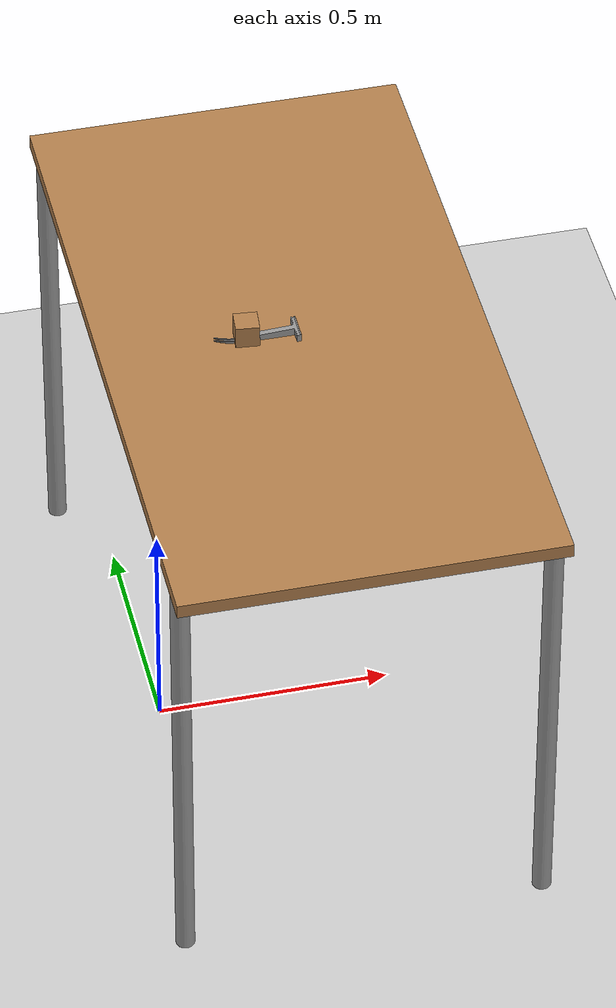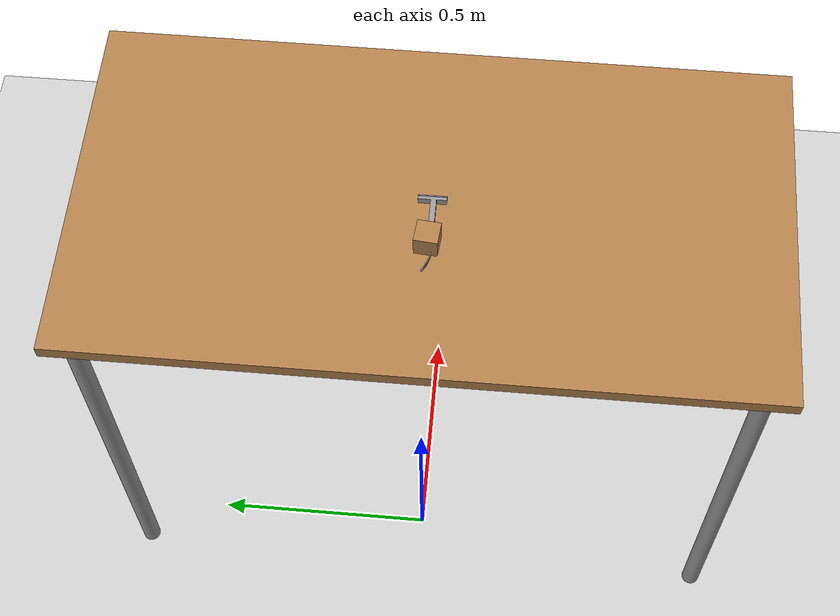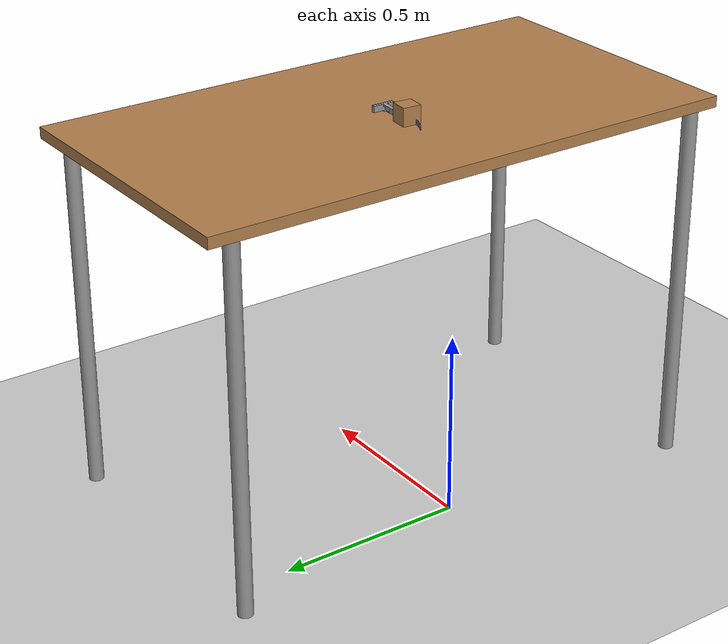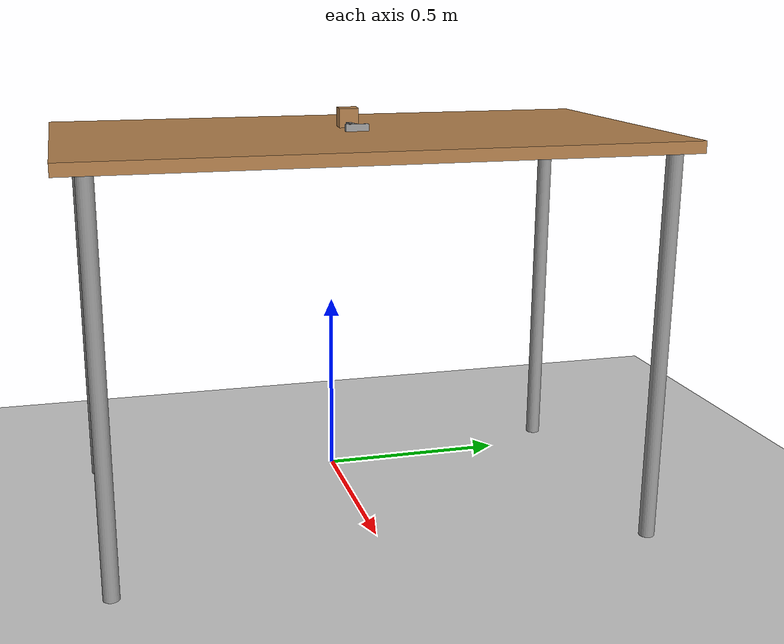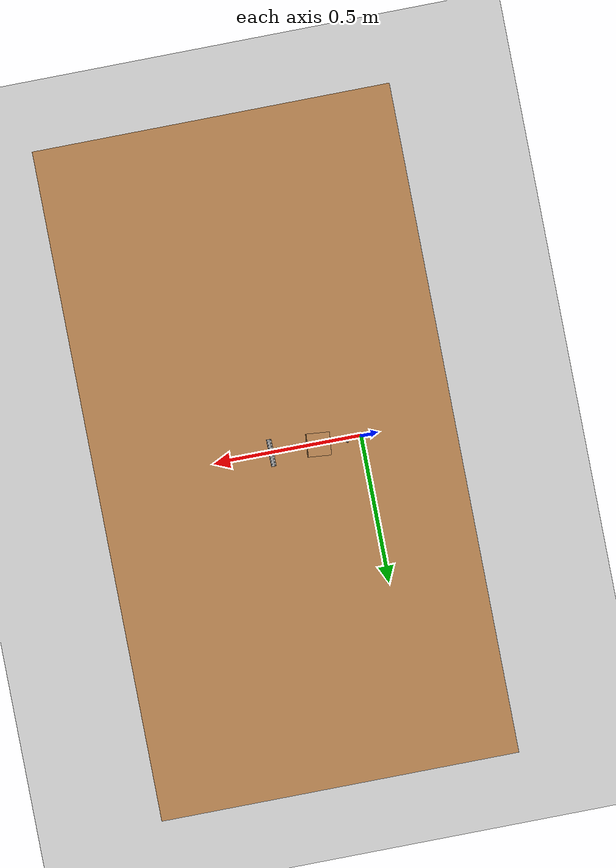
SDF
<sdf version="1.7">
 <world name="CRANE-X7 with Table">
  <scene><shadows>0</shadows><ambient>0.4 0.4 0.4 1</ambient><background>0.7 0.7 0.7 1</background></scene>
  <light name="sun" type="directional">
   <pose>0 0 10 0 -0 0</pose>
   <diffuse>0.8 0.8 0.8 1</diffuse>
   <specular>0.2 0.2 0.2 1</specular>
   <attenuation>
    <range>1000</range>
    <constant>0.9</constant>
    <linear>0.01</linear>
    <quadratic>0.001</quadratic>
   </attenuation>
   <direction>-0.5 0.1 -0.9</direction>
   <spot><inner_angle>0</inner_angle><outer_angle>0</outer_angle><falloff>0</falloff></spot>
  </light>
  <model name="table">
   <frame name="table::__model__" attached_to="table::link">
    <pose relative_to="__model__">0 0 0 0 -0 0</pose>
   </frame>
   <static>1</static>
   <link name="table::link">
    <collision name="surface">
     <pose>0 0 1 0 -0 0</pose>
     <geometry><box><size>1.5 0.8 0.03</size></box></geometry>
     <surface><friction><ode><mu>0.6</mu><mu2>0.6</mu2></ode></friction></surface>
    </collision>
    <visual name="visual1">
     <pose>0 0 1 0 -0 0</pose>
     <geometry><box><size>1.5 0.8 0.03</size></box></geometry>
     <material>
      <script><uri>file://media/materials/scripts/gazebo.material</uri><name>Gazebo/Wood</name></script>
     </material>
    </visual>
    <collision name="front_left_leg">
     <pose>0.68 0.38 0.5 0 -0 0</pose>
     <geometry><cylinder><radius>0.02</radius><length>1</length></cylinder></geometry>
    </collision>
    <visual name="front_left_leg">
     <pose>0.68 0.38 0.5 0 -0 0</pose>
     <geometry><cylinder><radius>0.02</radius><length>1</length></cylinder></geometry>
     <material>
      <script><uri>file://media/materials/scripts/gazebo.material</uri><name>Gazebo/Grey</name></script>
     </material>
    </visual>
    <collision name="front_right_leg">
     <pose>0.68 -0.38 0.5 0 -0 0</pose>
     <geometry><cylinder><radius>0.02</radius><length>1</length></cylinder></geometry>
    </collision>
    <visual name="front_right_leg">
     <pose>0.68 -0.38 0.5 0 -0 0</pose>
     <geometry><cylinder><radius>0.02</radius><length>1</length></cylinder></geometry>
     <material>
      <script><uri>file://media/materials/scripts/gazebo.material</uri><name>Gazebo/Grey</name></script>
     </material>
    </visual>
    <collision name="back_right_leg">
     <pose>-0.68 -0.38 0.5 0 -0 0</pose>
     <geometry><cylinder><radius>0.02</radius><length>1</length></cylinder></geometry>
    </collision>
    <visual name="back_right_leg">
     <pose>-0.68 -0.38 0.5 0 -0 0</pose>
     <geometry><cylinder><radius>0.02</radius><length>1</length></cylinder></geometry>
     <material>
      <script><uri>file://media/materials/scripts/gazebo.material</uri><name>Gazebo/Grey</name></script>
     </material>
    </visual>
    <collision name="back_left_leg">
     <pose>-0.68 0.38 0.5 0 -0 0</pose>
     <geometry><cylinder><radius>0.02</radius><length>1</length></cylinder></geometry>
    </collision>
    <visual name="back_left_leg">
     <pose>-0.68 0.38 0.5 0 -0 0</pose>
     <geometry><cylinder><radius>0.02</radius><length>1</length></cylinder></geometry>
     <material>
      <script><uri>file://media/materials/scripts/gazebo.material</uri><name>Gazebo/Grey</name></script>
     </material>
    </visual>
    <pose relative_to="table::__model__">0 0 0 0 -0 0</pose>
   </link>
   <pose>0.29 0 0 0 -0 1.5708</pose>
  </model>
  <model name="wood_cube_5cm">
   <frame name="wood_cube_5cm::__model__" attached_to="wood_cube_5cm::link">
    <pose relative_to="__model__">0 0 0 0 -0 0</pose>
   </frame>
   <link name="wood_cube_5cm::link">
    <pose relative_to="wood_cube_5cm::__model__">0 0 0.025 0 -0 0</pose>
    <inertial>
     <mass>0.0565</mass>
     <inertia>
      <ixx>2.35417e-05</ixx>
      <ixy>0</ixy>
      <ixz>0</ixz>
      <iyy>2.35417e-05</iyy>
      <iyz>0</iyz>
      <izz>2.35417e-05</izz>
     </inertia>
    </inertial>
    <collision name="collision">
     <geometry><box><size>0.05 0.05 0.05</size></box></geometry>
     <surface>
      <contact>
       <poissons_ratio>0.347</poissons_ratio>
       <elastic_modulus>8.8e+09</elastic_modulus>
       <ode><kp>100000</kp><kd>1</kd><max_vel>1</max_vel><min_depth>0.001</min_depth></ode>
      </contact>
      <friction>
       <torsional>
        <coefficient>1</coefficient>
        <use_patch_radius>0</use_patch_radius>
        <surface_radius>0.05</surface_radius>
       </torsional>
      </friction>
     </surface>
    </collision>
    <visual name="visual">
     <geometry><box><size>0.05 0.05 0.05</size></box></geometry>
     <material>
      <script><uri>file://media/materials/scripts/gazebo.material</uri><name>Gazebo/Wood</name></script>
     </material>
    </visual>
   </link>
   <pose>0.195595 0.001608 1.014 -0 -0 -0.095082</pose>
  </model>
  <model name="ground_plane">
   <frame name="ground_plane::__model__" attached_to="ground_plane::link">
    <pose relative_to="__model__">0 0 0 0 -0 0</pose>
   </frame>
   <static>1</static>
   <link name="ground_plane::link">
    <collision name="collision">
     <geometry><plane><normal>0 0 1</normal><size>100 100</size></plane></geometry>
     <surface><friction><ode><mu>100</mu><mu2>50</mu2></ode></friction></surface>
    </collision>
    <visual name="visual">
     <cast_shadows>0</cast_shadows>
     <geometry><plane><normal>0 0 1</normal><size>100 100</size></plane></geometry>
     <material>
      <script><uri>file://media/materials/scripts/gazebo.material</uri><name>Gazebo/Grey</name></script>
     </material>
    </visual>
    <pose relative_to="ground_plane::__model__">0 0 0 0 -0 0</pose>
   </link>
   <joint name="ground_joint" type="fixed"><parent>ground_plane::link</parent><child>table::link</child></joint>
  </model>
  <gravity>0 0 -9.8</gravity>
  <magnetic_field>6e-06 2.3e-05 -4.2e-05</magnetic_field>
  <atmosphere type="adiabatic"/>
  <physics type="ode">
   <max_step_size>0.001</max_step_size>
   <real_time_factor>1</real_time_factor>
   <real_time_update_rate>1000</real_time_update_rate>
  </physics>
  <spherical_coordinates>
   <surface_model>EARTH_WGS84</surface_model>
   <latitude_deg>0</latitude_deg>
   <longitude_deg>0</longitude_deg>
   <elevation>0</elevation>
   <heading_deg>0</heading_deg>
  </spherical_coordinates>
  <model name="fork">
   <link name="link_1">
    <inertial>
     <mass>1</mass>
     <inertia>
      <ixx>0.166667</ixx>
      <ixy>0</ixy>
      <ixz>0</ixz>
      <iyy>0.166667</iyy>
      <iyz>0</iyz>
      <izz>0.166667</izz>
     </inertia>
    </inertial>
    <pose>0 0 -0 1.5708 -0 0</pose>
    <visual name="visual">
     <geometry>
      <mesh><uri>/home/shiokaze/Documents/git/fork/m/fork_and_mount_m.stl</uri><scale>1 1 1</scale></mesh>
     </geometry>
     <material>
      <lighting>1</lighting>
      <script><uri>file://media/materials/scripts/gazebo.material</uri><name>Gazebo/Grey</name></script>
      <shader type="pixel"><normal_map>__default__</normal_map></shader>
      <ambient>0.3 0.3 0.3 1</ambient>
      <diffuse>0.7 0.7 0.7 1</diffuse>
      <specular>0.01 0.01 0.01 1</specular>
      <emissive>0 0 0 1</emissive>
     </material>
    </visual>
    <collision name="collision">
     <geometry>
      <mesh><uri>/home/shiokaze/Documents/git/fork/m/fork_and_mount_m.stl</uri><scale>1 1 1</scale></mesh>
     </geometry>
     <surface>
      <friction>
       <ode><mu>1</mu><mu2>1</mu2><fdir1>0 0 0</fdir1><slip1>0</slip1><slip2>0</slip2></ode>
       <torsional>
        <coefficient>1</coefficient>
        <patch_radius>0</patch_radius>
        <surface_radius>0</surface_radius>
        <use_patch_radius>1</use_patch_radius>
        <ode><slip>0</slip></ode>
       </torsional>
      </friction>
      <bounce><restitution_coefficient>0</restitution_coefficient><threshold>1e+06</threshold></bounce>
      <contact>
       <collide_without_contact>0</collide_without_contact>
       <collide_without_contact_bitmask>1</collide_without_contact_bitmask>
       <collide_bitmask>1</collide_bitmask>
       <ode>
        <soft_cfm>0</soft_cfm>
        <soft_erp>0.2</soft_erp>
        <kp>1e+13</kp>
        <kd>1</kd>
        <max_vel>0.01</max_vel>
        <min_depth>0</min_depth>
       </ode>
       <bullet>
        <split_impulse>1</split_impulse>
        <split_impulse_penetration_threshold>-0.01</split_impulse_penetration_threshold>
        <soft_cfm>0</soft_cfm>
        <soft_erp>0.2</soft_erp>
        <kp>1e+13</kp>
        <kd>1</kd>
       </bullet>
      </contact>
     </surface>
    </collision>
   </link>
   <static>0</static>
   <pose>0.299527 0 1.02171 -1e-05 0.051229 3.1414</pose>
  </model>
 </world>
</sdf>
